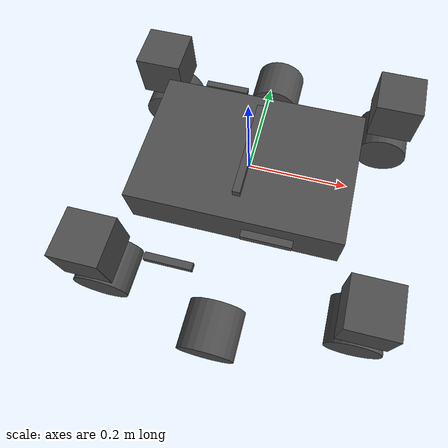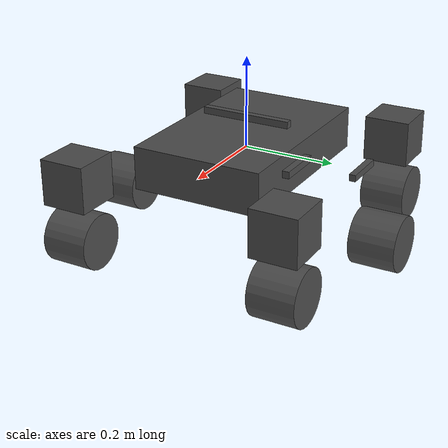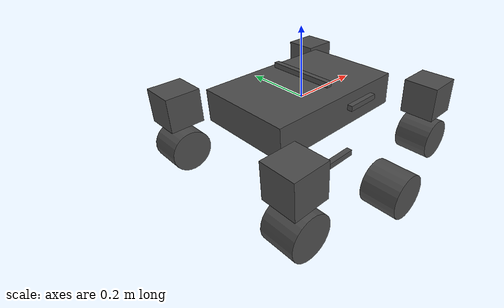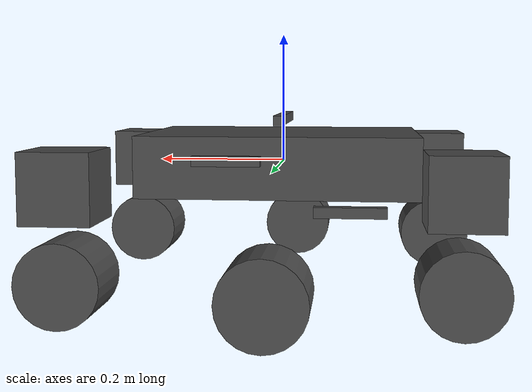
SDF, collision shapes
<sdf version='1.6'>
  <model name='curio'>
    <link name='base_link'>
      <pose frame=''>0 0 0 0 -0 0</pose>
      <inertial>
        <pose frame=''>0 0 0 0 -0 0</pose>
        <mass>0.01</mass>
        <inertia>
          <ixx>0.01</ixx>
          <ixy>0</ixy>
          <ixz>0</ixz>
          <iyy>0.01</iyy>
          <iyz>0</iyz>
          <izz>0.01</izz>
        </inertia>
      </inertial>
      <collision name='base_link_collision'>
        <pose frame=''>0 0 0 0 -0 0</pose>
        <geometry>
          <box>
            <size>0.001 0.001 0.001</size>
          </box>
        </geometry>
        <surface>
          <contact>
            <ode/>
          </contact>
          <friction>
            <ode/>
          </friction>
        </surface>
      </collision>
      <visual name='base_link_visual'>
        <pose frame=''>0 0 0 0 -0 0</pose>
        <geometry>
          <box>
            <size>0.001 0.001 0.001</size>
          </box>
        </geometry>
        <material>
          <script>
            <name>Gazebo/Orange</name>
            <uri>file://media/materials/scripts/gazebo.material</uri>
          </script>
        </material>
      </visual>
      <gravity>1</gravity>
      <velocity_decay/>
    </link>
    <link name='body_box_link'>
      <pose frame=''>0 0 0 0 -0 0</pose>
      <inertial>
        <pose frame=''>0 0 0 0 -0 0</pose>
        <mass>0.5</mass>
        <inertia>
          <ixx>0.00374475</ixx>
          <ixy>0</ixy>
          <ixz>0</ixz>
          <iyy>0.00788642</iyy>
          <iyz>0</iyz>
          <izz>0.0109104</izz>
        </inertia>
      </inertial>
      <collision name='body_box_link_collision'>
        <pose frame=''>0 0 0 0 -0 0</pose>
        <geometry>
          <box>
            <size>0.425 0.285 0.093</size>
          </box>
        </geometry>
        <surface>
          <contact>
            <ode/>
          </contact>
          <friction>
            <ode/>
          </friction>
        </surface>
      </collision>
      <visual name='body_box_link_visual'>
        <pose frame=''>0 0 0 0 -0 0</pose>
        <geometry>
          <box>
            <size>0.425 0.285 0.093</size>
          </box>
        </geometry>
        <material>
          <script>
            <name>Gazebo/DarkGray</name>
            <uri>file://media/materials/scripts/gazebo.material</uri>
          </script>
        </material>
      </visual>
      <gravity>1</gravity>
      <velocity_decay/>
    </link>
    <joint name='body_box_joint' type='fixed'>
      <child>body_box_link</child>
      <parent>base_link</parent>
      <axis>
        <dynamics>
          <spring_reference>0</spring_reference>
          <spring_stiffness>0</spring_stiffness>
        </dynamics>
        <use_parent_model_frame>1</use_parent_model_frame>
        <xyz>0 0 1</xyz>
        <limit>
          <lower>-1e+16</lower>
          <upper>1e+16</upper>
        </limit>
      </axis>
      <physics>
        <ode>
          <limit>
            <cfm>0</cfm>
            <erp>0.2</erp>
          </limit>
        </ode>
      </physics>
    </joint>
    <link name='diff_brace_link'>
      <pose frame=''>0 0 0.0681 0 -0 0</pose>
      <inertial>
        <pose frame=''>0 0 0 0 -0 1.5708</pose>
        <mass>0.1</mass>
        <inertia>
          <ixx>3.75e-06</ixx>
          <ixy>0</ixy>
          <ixz>0</ixz>
          <iyy>0.000335208</iyy>
          <iyz>0</iyz>
          <izz>0.000335208</izz>
        </inertia>
      </inertial>
      <collision name='diff_brace_link_collision'>
        <pose frame=''>0 0 0 0 -0 1.5708</pose>
        <geometry>
          <box>
            <size>0.2 0.015 0.015</size>
          </box>
        </geometry>
        <surface>
          <contact>
            <ode/>
          </contact>
          <friction>
            <ode/>
          </friction>
        </surface>
      </collision>
      <visual name='diff_brace_link_visual'>
        <pose frame=''>0 0 0 0 -0 1.5708</pose>
        <geometry>
          <box>
            <size>0.2 0.015 0.015</size>
          </box>
        </geometry>
        <material>
          <script>
            <name>Gazebo/DarkGray</name>
            <uri>file://media/materials/scripts/gazebo.material</uri>
          </script>
        </material>
      </visual>
      <gravity>1</gravity>
      <velocity_decay/>
    </link>
    <joint name='diff_brace_joint' type='revolute'>
      <child>diff_brace_link</child>
      <parent>base_link</parent>
      <axis>
        <xyz>0 0 1</xyz>
        <limit>
          <lower>-1e+16</lower>
          <upper>1e+16</upper>
        </limit>
        <dynamics>
          <spring_reference>0</spring_reference>
          <spring_stiffness>0</spring_stiffness>
        </dynamics>
        <use_parent_model_frame>1</use_parent_model_frame>
      </axis>
      <physics>
        <provide_feedback>1</provide_feedback>
        <ode>
          <provide_feedback>1</provide_feedback>
          <limit>
            <cfm>0</cfm>
            <erp>0.2</erp>
          </limit>
        </ode>
      </physics>
    </joint>
    <link name='left_rocker_link'>
      <pose frame=''>0.071 0.154 0.0118 0 -0 0</pose>
      <inertial>
        <pose frame=''>0 0 0 0 -0 0</pose>
        <mass>0.1</mass>
        <inertia>
          <ixx>3.75e-06</ixx>
          <ixy>0</ixy>
          <ixz>0</ixz>
          <iyy>8.52083e-05</iyy>
          <iyz>0</iyz>
          <izz>8.52083e-05</izz>
        </inertia>
      </inertial>
      <collision name='left_rocker_link_collision'>
        <pose frame=''>0 0 0 0 -0 0</pose>
        <geometry>
          <box>
            <size>0.1 0.015 0.015</size>
          </box>
        </geometry>
        <surface>
          <contact>
            <ode/>
          </contact>
          <friction>
            <ode/>
          </friction>
        </surface>
      </collision>
      <visual name='left_rocker_link_visual'>
        <pose frame=''>0 0 0 0 -0 0</pose>
        <geometry>
          <box>
            <size>0.1 0.015 0.015</size>
          </box>
        </geometry>
        <material>
          <script>
            <name>Gazebo/DarkGray</name>
            <uri>file://media/materials/scripts/gazebo.material</uri>
          </script>
        </material>
      </visual>
      <gravity>1</gravity>
      <velocity_decay/>
    </link>
    <joint name='left_rocker_joint' type='revolute'>
      <child>left_rocker_link</child>
      <parent>base_link</parent>
      <axis>
        <xyz>0 1 0</xyz>
        <limit>
          <lower>-1e+16</lower>
          <upper>1e+16</upper>
        </limit>
        <dynamics>
          <spring_reference>0</spring_reference>
          <spring_stiffness>0</spring_stiffness>
        </dynamics>
        <use_parent_model_frame>1</use_parent_model_frame>
      </axis>
      <physics>
        <provide_feedback>1</provide_feedback>
        <ode>
          <provide_feedback>1</provide_feedback>
          <limit>
            <cfm>0</cfm>
            <erp>0.2</erp>
          </limit>
        </ode>
      </physics>
    </joint>
    <link name='front_left_corner_link'>
      <pose frame=''>0.2826 0.235 -0.0161 0 -0 0</pose>
      <inertial>
        <pose frame=''>0 0 0 0 -0 0</pose>
        <mass>0.1</mass>
        <inertia>
          <ixx>0.000166667</ixx>
          <ixy>0</ixy>
          <ixz>0</ixz>
          <iyy>0.000166667</iyy>
          <iyz>0</iyz>
          <izz>0.000166667</izz>
        </inertia>
      </inertial>
      <collision name='front_left_corner_link_collision'>
        <pose frame=''>0 0 0 0 -0 0</pose>
        <geometry>
          <box>
            <size>0.1 0.1 0.1</size>
          </box>
        </geometry>
        <surface>
          <contact>
            <ode/>
          </contact>
          <friction>
            <ode/>
          </friction>
        </surface>
      </collision>
      <visual name='front_left_corner_link_visual'>
        <pose frame=''>0 0 0 0 -0 0</pose>
        <geometry>
          <box>
            <size>0.1 0.1 0.1</size>
          </box>
        </geometry>
        <material>
          <script>
            <name>Gazebo/DarkGray</name>
            <uri>file://media/materials/scripts/gazebo.material</uri>
          </script>
        </material>
      </visual>
      <gravity>1</gravity>
      <velocity_decay/>
    </link>
    <joint name='front_left_corner_joint' type='revolute'>
      <child>front_left_corner_link</child>
      <parent>left_rocker_link</parent>
      <axis>
        <xyz>0 0 1</xyz>
        <limit>
          <lower>-1e+16</lower>
          <upper>1e+16</upper>
        </limit>
        <dynamics>
          <spring_reference>0</spring_reference>
          <spring_stiffness>0</spring_stiffness>
        </dynamics>
        <use_parent_model_frame>1</use_parent_model_frame>
      </axis>
      <physics>
        <provide_feedback>1</provide_feedback>
        <ode>
          <provide_feedback>1</provide_feedback>
          <limit>
            <cfm>0</cfm>
            <erp>0.2</erp>
          </limit>
        </ode>
      </physics>
    </joint>
    <link name='front_left_wheel_link'>
      <pose frame=''>0.2826 0.235 -0.1481 0 -0 0</pose>
      <inertial>
        <pose frame=''>0 0 0 0 -0 0</pose>
        <mass>0.1</mass>
        <inertia>
          <ixx>0.000173333</ixx>
          <ixy>0</ixy>
          <ixz>0</ixz>
          <iyy>0.000173333</iyy>
          <iyz>0</iyz>
          <izz>0.00018</izz>
        </inertia>
      </inertial>
      <collision name='front_left_wheel_link_collision'>
        <pose frame=''>0 0 0 1.5708 -0 0</pose>
        <geometry>
          <cylinder>
            <length>0.1</length>
            <radius>0.06</radius>
          </cylinder>
        </geometry>
        <surface>
          <contact>
            <ode/>
          </contact>
          <friction>
            <ode/>
          </friction>
        </surface>
      </collision>
      <visual name='front_left_wheel_link_visual'>
        <pose frame=''>0 0 0 1.5708 -0 0</pose>
        <geometry>
          <mesh>
            <scale>1 1 1</scale>
            <uri>model://curio_description/meshes/wheels/wheel.stl</uri>
          </mesh>
        </geometry>
        <material>
          <script>
            <name>Gazebo/DarkGray</name>
            <uri>file://media/materials/scripts/gazebo.material</uri>
          </script>
        </material>
      </visual>
      <gravity>1</gravity>
      <velocity_decay/>
    </link>
    <joint name='front_left_wheel_joint' type='revolute'>
      <child>front_left_wheel_link</child>
      <parent>front_left_corner_link</parent>
      <axis>
        <xyz>0 1 0</xyz>
        <limit>
          <lower>-1e+16</lower>
          <upper>1e+16</upper>
        </limit>
        <dynamics>
          <spring_reference>0</spring_reference>
          <spring_stiffness>0</spring_stiffness>
        </dynamics>
        <use_parent_model_frame>1</use_parent_model_frame>
      </axis>
      <physics>
        <provide_feedback>1</provide_feedback>
        <ode>
          <provide_feedback>1</provide_feedback>
          <limit>
            <cfm>0</cfm>
            <erp>0.2</erp>
          </limit>
        </ode>
      </physics>
    </joint>
    <link name='left_bogie_link'>
      <pose frame=''>-0.11 0.2215 -0.0502 0 -0 0</pose>
      <inertial>
        <pose frame=''>0 0 0 0 -0 0</pose>
        <mass>0.1</mass>
        <inertia>
          <ixx>3.75e-06</ixx>
          <ixy>0</ixy>
          <ixz>0</ixz>
          <iyy>8.52083e-05</iyy>
          <iyz>0</iyz>
          <izz>8.52083e-05</izz>
        </inertia>
      </inertial>
      <collision name='left_bogie_link_collision'>
        <pose frame=''>0 0 0 0 -0 0</pose>
        <geometry>
          <box>
            <size>0.1 0.015 0.015</size>
          </box>
        </geometry>
        <surface>
          <contact>
            <ode/>
          </contact>
          <friction>
            <ode/>
          </friction>
        </surface>
      </collision>
      <visual name='left_bogie_link_visual'>
        <pose frame=''>0 0 0 0 -0 0</pose>
        <geometry>
          <box>
            <size>0.1 0.015 0.015</size>
          </box>
        </geometry>
        <material>
          <script>
            <name>Gazebo/DarkGray</name>
            <uri>file://media/materials/scripts/gazebo.material</uri>
          </script>
        </material>
      </visual>
      <gravity>1</gravity>
      <velocity_decay/>
    </link>
    <joint name='left_bogie_joint' type='revolute'>
      <child>left_bogie_link</child>
      <parent>left_rocker_link</parent>
      <axis>
        <xyz>0 1 0</xyz>
        <limit>
          <lower>-1e+16</lower>
          <upper>1e+16</upper>
        </limit>
        <dynamics>
          <spring_reference>0</spring_reference>
          <spring_stiffness>0</spring_stiffness>
        </dynamics>
        <use_parent_model_frame>1</use_parent_model_frame>
      </axis>
      <physics>
        <provide_feedback>1</provide_feedback>
        <ode>
          <provide_feedback>1</provide_feedback>
          <limit>
            <cfm>0</cfm>
            <erp>0.2</erp>
          </limit>
        </ode>
      </physics>
    </joint>
    <link name='back_left_corner_link'>
      <pose frame=''>-0.259 0.2351 -0.0164 0 -0 0</pose>
      <inertial>
        <pose frame=''>0 0 0 0 -0 0</pose>
        <mass>0.1</mass>
        <inertia>
          <ixx>0.000166667</ixx>
          <ixy>0</ixy>
          <ixz>0</ixz>
          <iyy>0.000166667</iyy>
          <iyz>0</iyz>
          <izz>0.000166667</izz>
        </inertia>
      </inertial>
      <collision name='back_left_corner_link_collision'>
        <pose frame=''>0 0 0 0 -0 0</pose>
        <geometry>
          <box>
            <size>0.1 0.1 0.1</size>
          </box>
        </geometry>
        <surface>
          <contact>
            <ode/>
          </contact>
          <friction>
            <ode/>
          </friction>
        </surface>
      </collision>
      <visual name='back_left_corner_link_visual'>
        <pose frame=''>0 0 0 0 -0 0</pose>
        <geometry>
          <box>
            <size>0.1 0.1 0.1</size>
          </box>
        </geometry>
        <material>
          <script>
            <name>Gazebo/DarkGray</name>
            <uri>file://media/materials/scripts/gazebo.material</uri>
          </script>
        </material>
      </visual>
      <gravity>1</gravity>
      <velocity_decay/>
    </link>
    <joint name='back_left_corner_joint' type='revolute'>
      <child>back_left_corner_link</child>
      <parent>left_bogie_link</parent>
      <axis>
        <xyz>0 0 1</xyz>
        <limit>
          <lower>-1e+16</lower>
          <upper>1e+16</upper>
        </limit>
        <dynamics>
          <spring_reference>0</spring_reference>
          <spring_stiffness>0</spring_stiffness>
        </dynamics>
        <use_parent_model_frame>1</use_parent_model_frame>
      </axis>
      <physics>
        <provide_feedback>1</provide_feedback>
        <ode>
          <provide_feedback>1</provide_feedback>
          <limit>
            <cfm>0</cfm>
            <erp>0.2</erp>
          </limit>
        </ode>
      </physics>
    </joint>
    <link name='back_left_wheel_link'>
      <pose frame=''>-0.259 0.2351 -0.1484 0 -0 0</pose>
      <inertial>
        <pose frame=''>0 0 0 0 -0 0</pose>
        <mass>0.1</mass>
        <inertia>
          <ixx>0.000173333</ixx>
          <ixy>0</ixy>
          <ixz>0</ixz>
          <iyy>0.000173333</iyy>
          <iyz>0</iyz>
          <izz>0.00018</izz>
        </inertia>
      </inertial>
      <collision name='back_left_wheel_link_collision'>
        <pose frame=''>0 0 0 1.5708 -0 0</pose>
        <geometry>
          <cylinder>
            <length>0.1</length>
            <radius>0.06</radius>
          </cylinder>
        </geometry>
        <surface>
          <contact>
            <ode/>
          </contact>
          <friction>
            <ode/>
          </friction>
        </surface>
      </collision>
      <visual name='back_left_wheel_link_visual'>
        <pose frame=''>0 0 0 1.5708 -0 0</pose>
        <geometry>
          <mesh>
            <scale>1 1 1</scale>
            <uri>model://curio_description/meshes/wheels/wheel.stl</uri>
          </mesh>
        </geometry>
        <material>
          <script>
            <name>Gazebo/DarkGray</name>
            <uri>file://media/materials/scripts/gazebo.material</uri>
          </script>
        </material>
      </visual>
      <gravity>1</gravity>
      <velocity_decay/>
    </link>
    <joint name='back_left_wheel_joint' type='revolute'>
      <child>back_left_wheel_link</child>
      <parent>back_left_corner_link</parent>
      <axis>
        <xyz>0 1 0</xyz>
        <limit>
          <lower>-1e+16</lower>
          <upper>1e+16</upper>
        </limit>
        <dynamics>
          <spring_reference>0</spring_reference>
          <spring_stiffness>0</spring_stiffness>
        </dynamics>
        <use_parent_model_frame>1</use_parent_model_frame>
      </axis>
      <physics>
        <provide_feedback>1</provide_feedback>
        <ode>
          <provide_feedback>1</provide_feedback>
          <limit>
            <cfm>0</cfm>
            <erp>0.2</erp>
          </limit>
        </ode>
      </physics>
    </joint>
    <link name='mid_left_wheel_link'>
      <pose frame=''>-0.0037 0.3144 -0.1461 0 -0 0</pose>
      <inertial>
        <pose frame=''>0 0 0 0 -0 0</pose>
        <mass>0.1</mass>
        <inertia>
          <ixx>0.000173333</ixx>
          <ixy>0</ixy>
          <ixz>0</ixz>
          <iyy>0.000173333</iyy>
          <iyz>0</iyz>
          <izz>0.00018</izz>
        </inertia>
      </inertial>
      <collision name='mid_left_wheel_link_collision'>
        <pose frame=''>0 0 0 1.5708 -0 0</pose>
        <geometry>
          <cylinder>
            <length>0.1</length>
            <radius>0.06</radius>
          </cylinder>
        </geometry>
        <surface>
          <contact>
            <ode/>
          </contact>
          <friction>
            <ode/>
          </friction>
        </surface>
      </collision>
      <visual name='mid_left_wheel_link_visual'>
        <pose frame=''>0 0 0 1.5708 -0 0</pose>
        <geometry>
          <mesh>
            <scale>1 1 1</scale>
            <uri>model://curio_description/meshes/wheels/wheel.stl</uri>
          </mesh>
        </geometry>
        <material>
          <script>
            <name>Gazebo/DarkGray</name>
            <uri>file://media/materials/scripts/gazebo.material</uri>
          </script>
        </material>
      </visual>
      <gravity>1</gravity>
      <velocity_decay/>
    </link>
    <joint name='mid_left_wheel_joint' type='revolute'>
      <child>mid_left_wheel_link</child>
      <parent>left_bogie_link</parent>
      <axis>
        <xyz>0 1 0</xyz>
        <limit>
          <lower>-1e+16</lower>
          <upper>1e+16</upper>
        </limit>
        <dynamics>
          <spring_reference>0</spring_reference>
          <spring_stiffness>0</spring_stiffness>
        </dynamics>
        <use_parent_model_frame>1</use_parent_model_frame>
      </axis>
      <physics>
        <provide_feedback>1</provide_feedback>
        <ode>
          <provide_feedback>1</provide_feedback>
          <limit>
            <cfm>0</cfm>
            <erp>0.2</erp>
          </limit>
        </ode>
      </physics>
    </joint>
    <link name='right_rocker_link'>
      <pose frame=''>0.071 -0.154 0.0118 0 -0 0</pose>
      <inertial>
        <pose frame=''>0 0 0 0 -0 0</pose>
        <mass>0.1</mass>
        <inertia>
          <ixx>3.75e-06</ixx>
          <ixy>0</ixy>
          <ixz>0</ixz>
          <iyy>8.52083e-05</iyy>
          <iyz>0</iyz>
          <izz>8.52083e-05</izz>
        </inertia>
      </inertial>
      <collision name='right_rocker_link_collision'>
        <pose frame=''>0 0 0 0 -0 0</pose>
        <geometry>
          <box>
            <size>0.1 0.015 0.015</size>
          </box>
        </geometry>
        <surface>
          <contact>
            <ode/>
          </contact>
          <friction>
            <ode/>
          </friction>
        </surface>
      </collision>
      <visual name='right_rocker_link_visual'>
        <pose frame=''>0 0 0 0 -0 0</pose>
        <geometry>
          <box>
            <size>0.1 0.015 0.015</size>
          </box>
        </geometry>
        <material>
          <script>
            <name>Gazebo/DarkGray</name>
            <uri>file://media/materials/scripts/gazebo.material</uri>
          </script>
        </material>
      </visual>
      <gravity>1</gravity>
      <velocity_decay/>
    </link>
    <joint name='right_rocker_joint' type='revolute'>
      <child>right_rocker_link</child>
      <parent>base_link</parent>
      <axis>
        <xyz>0 1 0</xyz>
        <limit>
          <lower>-1e+16</lower>
          <upper>1e+16</upper>
        </limit>
        <dynamics>
          <spring_reference>0</spring_reference>
          <spring_stiffness>0</spring_stiffness>
        </dynamics>
        <use_parent_model_frame>1</use_parent_model_frame>
      </axis>
      <physics>
        <provide_feedback>1</provide_feedback>
        <ode>
          <provide_feedback>1</provide_feedback>
          <limit>
            <cfm>0</cfm>
            <erp>0.2</erp>
          </limit>
        </ode>
      </physics>
    </joint>
    <link name='front_right_corner_link'>
      <pose frame=''>0.2826 -0.235 -0.0161 0 -0 0</pose>
      <inertial>
        <pose frame=''>0 0 0 0 -0 0</pose>
        <mass>0.1</mass>
        <inertia>
          <ixx>0.000166667</ixx>
          <ixy>0</ixy>
          <ixz>0</ixz>
          <iyy>0.000166667</iyy>
          <iyz>0</iyz>
          <izz>0.000166667</izz>
        </inertia>
      </inertial>
      <collision name='front_right_corner_link_collision'>
        <pose frame=''>0 0 0 0 -0 0</pose>
        <geometry>
          <box>
            <size>0.1 0.1 0.1</size>
          </box>
        </geometry>
        <surface>
          <contact>
            <ode/>
          </contact>
          <friction>
            <ode/>
          </friction>
        </surface>
      </collision>
      <visual name='front_right_corner_link_visual'>
        <pose frame=''>0 0 0 0 -0 0</pose>
        <geometry>
          <box>
            <size>0.1 0.1 0.1</size>
          </box>
        </geometry>
        <material>
          <script>
            <name>Gazebo/DarkGray</name>
            <uri>file://media/materials/scripts/gazebo.material</uri>
          </script>
        </material>
      </visual>
      <gravity>1</gravity>
      <velocity_decay/>
    </link>
    <joint name='front_right_corner_joint' type='revolute'>
      <child>front_right_corner_link</child>
      <parent>right_rocker_link</parent>
      <axis>
        <xyz>0 0 1</xyz>
        <limit>
          <lower>-1e+16</lower>
          <upper>1e+16</upper>
        </limit>
        <dynamics>
          <spring_reference>0</spring_reference>
          <spring_stiffness>0</spring_stiffness>
        </dynamics>
        <use_parent_model_frame>1</use_parent_model_frame>
      </axis>
      <physics>
        <provide_feedback>1</provide_feedback>
        <ode>
          <provide_feedback>1</provide_feedback>
          <limit>
            <cfm>0</cfm>
            <erp>0.2</erp>
          </limit>
        </ode>
      </physics>
    </joint>
    <link name='front_right_wheel_link'>
      <pose frame=''>0.2826 -0.235 -0.1481 0 -0 0</pose>
      <inertial>
        <pose frame=''>0 0 0 0 -0 0</pose>
        <mass>0.1</mass>
        <inertia>
          <ixx>0.000173333</ixx>
          <ixy>0</ixy>
          <ixz>0</ixz>
          <iyy>0.000173333</iyy>
          <iyz>0</iyz>
          <izz>0.00018</izz>
        </inertia>
      </inertial>
      <collision name='front_right_wheel_link_collision'>
        <pose frame=''>0 0 0 -1.5708 0 0</pose>
        <geometry>
          <cylinder>
            <length>0.1</length>
            <radius>0.06</radius>
          </cylinder>
        </geometry>
        <surface>
          <contact>
            <ode/>
          </contact>
          <friction>
            <ode/>
          </friction>
        </surface>
      </collision>
      <visual name='front_right_wheel_link_visual'>
        <pose frame=''>0 0 0 -1.5708 0 0</pose>
        <geometry>
          <mesh>
            <scale>1 1 1</scale>
            <uri>model://curio_description/meshes/wheels/wheel.stl</uri>
          </mesh>
        </geometry>
        <material>
          <script>
            <name>Gazebo/DarkGray</name>
            <uri>file://media/materials/scripts/gazebo.material</uri>
          </script>
        </material>
      </visual>
      <gravity>1</gravity>
      <velocity_decay/>
    </link>
    <joint name='front_right_wheel_joint' type='revolute'>
      <child>front_right_wheel_link</child>
      <parent>front_right_corner_link</parent>
      <axis>
        <xyz>0 1 0</xyz>
        <limit>
          <lower>-1e+16</lower>
          <upper>1e+16</upper>
        </limit>
        <dynamics>
          <spring_reference>0</spring_reference>
          <spring_stiffness>0</spring_stiffness>
        </dynamics>
        <use_parent_model_frame>1</use_parent_model_frame>
      </axis>
      <physics>
        <provide_feedback>1</provide_feedback>
        <ode>
          <provide_feedback>1</provide_feedback>
          <limit>
            <cfm>0</cfm>
            <erp>0.2</erp>
          </limit>
        </ode>
      </physics>
    </joint>
    <link name='right_bogie_link'>
      <pose frame=''>-0.11 -0.2215 -0.0502 0 -0 0</pose>
      <inertial>
        <pose frame=''>0 0 0 0 -0 0</pose>
        <mass>0.1</mass>
        <inertia>
          <ixx>3.75e-06</ixx>
          <ixy>0</ixy>
          <ixz>0</ixz>
          <iyy>8.52083e-05</iyy>
          <iyz>0</iyz>
          <izz>8.52083e-05</izz>
        </inertia>
      </inertial>
      <collision name='right_bogie_link_collision'>
        <pose frame=''>0 0 0 0 -0 0</pose>
        <geometry>
          <box>
            <size>0.1 0.015 0.015</size>
          </box>
        </geometry>
        <surface>
          <contact>
            <ode/>
          </contact>
          <friction>
            <ode/>
          </friction>
        </surface>
      </collision>
      <visual name='right_bogie_link_visual'>
        <pose frame=''>0 0 0 0 -0 0</pose>
        <geometry>
          <box>
            <size>0.1 0.015 0.015</size>
          </box>
        </geometry>
        <material>
          <script>
            <name>Gazebo/DarkGray</name>
            <uri>file://media/materials/scripts/gazebo.material</uri>
          </script>
        </material>
      </visual>
      <gravity>1</gravity>
      <velocity_decay/>
    </link>
    <joint name='right_bogie_joint' type='revolute'>
      <child>right_bogie_link</child>
      <parent>right_rocker_link</parent>
      <axis>
        <xyz>0 1 0</xyz>
        <limit>
          <lower>-1e+16</lower>
          <upper>1e+16</upper>
        </limit>
        <dynamics>
          <spring_reference>0</spring_reference>
          <spring_stiffness>0</spring_stiffness>
        </dynamics>
        <use_parent_model_frame>1</use_parent_model_frame>
      </axis>
      <physics>
        <provide_feedback>1</provide_feedback>
        <ode>
          <provide_feedback>1</provide_feedback>
          <limit>
            <cfm>0</cfm>
            <erp>0.2</erp>
          </limit>
        </ode>
      </physics>
    </joint>
    <link name='back_right_corner_link'>
      <pose frame=''>-0.259 -0.2351 -0.0164 0 -0 0</pose>
      <inertial>
        <pose frame=''>0 0 0 0 -0 0</pose>
        <mass>0.1</mass>
        <inertia>
          <ixx>0.000166667</ixx>
          <ixy>0</ixy>
          <ixz>0</ixz>
          <iyy>0.000166667</iyy>
          <iyz>0</iyz>
          <izz>0.000166667</izz>
        </inertia>
      </inertial>
      <collision name='back_right_corner_link_collision'>
        <pose frame=''>0 0 0 0 -0 0</pose>
        <geometry>
          <box>
            <size>0.1 0.1 0.1</size>
          </box>
        </geometry>
        <surface>
          <contact>
            <ode/>
          </contact>
          <friction>
            <ode/>
          </friction>
        </surface>
      </collision>
      <visual name='back_right_corner_link_visual'>
        <pose frame=''>0 0 0 0 -0 0</pose>
        <geometry>
          <box>
            <size>0.1 0.1 0.1</size>
          </box>
        </geometry>
        <material>
          <script>
            <name>Gazebo/DarkGray</name>
            <uri>file://media/materials/scripts/gazebo.material</uri>
          </script>
        </material>
      </visual>
      <gravity>1</gravity>
      <velocity_decay/>
    </link>
    <joint name='back_right_corner_joint' type='revolute'>
      <child>back_right_corner_link</child>
      <parent>right_bogie_link</parent>
      <axis>
        <xyz>0 0 1</xyz>
        <limit>
          <lower>-1e+16</lower>
          <upper>1e+16</upper>
        </limit>
        <dynamics>
          <spring_reference>0</spring_reference>
          <spring_stiffness>0</spring_stiffness>
        </dynamics>
        <use_parent_model_frame>1</use_parent_model_frame>
      </axis>
      <physics>
        <provide_feedback>1</provide_feedback>
        <ode>
          <provide_feedback>1</provide_feedback>
          <limit>
            <cfm>0</cfm>
            <erp>0.2</erp>
          </limit>
        </ode>
      </physics>
    </joint>
    <link name='back_right_wheel_link'>
      <pose frame=''>-0.259 -0.2351 -0.1484 0 -0 0</pose>
      <inertial>
        <pose frame=''>0 0 0 0 -0 0</pose>
        <mass>0.1</mass>
        <inertia>
          <ixx>0.000173333</ixx>
          <ixy>0</ixy>
          <ixz>0</ixz>
          <iyy>0.000173333</iyy>
          <iyz>0</iyz>
          <izz>0.00018</izz>
        </inertia>
      </inertial>
      <collision name='back_right_wheel_link_collision'>
        <pose frame=''>0 0 0 -1.5708 0 0</pose>
        <geometry>
          <cylinder>
            <length>0.1</length>
            <radius>0.06</radius>
          </cylinder>
        </geometry>
        <surface>
          <contact>
            <ode/>
          </contact>
          <friction>
            <ode/>
          </friction>
        </surface>
      </collision>
      <visual name='back_right_wheel_link_visual'>
        <pose frame=''>0 0 0 -1.5708 0 0</pose>
        <geometry>
          <mesh>
            <scale>1 1 1</scale>
            <uri>model://curio_description/meshes/wheels/wheel.stl</uri>
          </mesh>
        </geometry>
        <material>
          <script>
            <name>Gazebo/DarkGray</name>
            <uri>file://media/materials/scripts/gazebo.material</uri>
          </script>
        </material>
      </visual>
      <gravity>1</gravity>
      <velocity_decay/>
    </link>
    <joint name='back_right_wheel_joint' type='revolute'>
      <child>back_right_wheel_link</child>
      <parent>back_right_corner_link</parent>
      <axis>
        <xyz>0 1 0</xyz>
        <limit>
          <lower>-1e+16</lower>
          <upper>1e+16</upper>
        </limit>
        <dynamics>
          <spring_reference>0</spring_reference>
          <spring_stiffness>0</spring_stiffness>
        </dynamics>
        <use_parent_model_frame>1</use_parent_model_frame>
      </axis>
      <physics>
        <provide_feedback>1</provide_feedback>
        <ode>
          <provide_feedback>1</provide_feedback>
          <limit>
            <cfm>0</cfm>
            <erp>0.2</erp>
          </limit>
        </ode>
      </physics>
    </joint>
    <link name='mid_right_wheel_link'>
      <pose frame=''>-0.0037 -0.3144 -0.1461 0 -0 0</pose>
      <inertial>
        <pose frame=''>0 0 0 0 -0 0</pose>
        <mass>0.1</mass>
        <inertia>
          <ixx>0.000173333</ixx>
          <ixy>0</ixy>
          <ixz>0</ixz>
          <iyy>0.000173333</iyy>
          <iyz>0</iyz>
          <izz>0.00018</izz>
        </inertia>
      </inertial>
      <collision name='mid_right_wheel_link_collision'>
        <pose frame=''>0 0 0 -1.5708 0 0</pose>
        <geometry>
          <cylinder>
            <length>0.1</length>
            <radius>0.06</radius>
          </cylinder>
        </geometry>
        <surface>
          <contact>
            <ode/>
          </contact>
          <friction>
            <ode/>
          </friction>
        </surface>
      </collision>
      <visual name='mid_right_wheel_link_visual'>
        <pose frame=''>0 0 0 -1.5708 0 0</pose>
        <geometry>
          <mesh>
            <scale>1 1 1</scale>
            <uri>model://curio_description/meshes/wheels/wheel.stl</uri>
          </mesh>
        </geometry>
        <material>
          <script>
            <name>Gazebo/DarkGray</name>
            <uri>file://media/materials/scripts/gazebo.material</uri>
          </script>
        </material>
      </visual>
      <gravity>1</gravity>
      <velocity_decay/>
    </link>
    <joint name='mid_right_wheel_joint' type='revolute'>
      <child>mid_right_wheel_link</child>
      <parent>right_bogie_link</parent>
      <axis>
        <xyz>0 1 0</xyz>
        <limit>
          <lower>-1e+16</lower>
          <upper>1e+16</upper>
        </limit>
        <dynamics>
          <spring_reference>0</spring_reference>
          <spring_stiffness>0</spring_stiffness>
        </dynamics>
        <use_parent_model_frame>1</use_parent_model_frame>
      </axis>
      <physics>
        <provide_feedback>1</provide_feedback>
        <ode>
          <provide_feedback>1</provide_feedback>
          <limit>
            <cfm>0</cfm>
            <erp>0.2</erp>
          </limit>
        </ode>
      </physics>
    </joint>
    <plugin name='gazebo_ros_control' filename='libgazebo_ros_control.so'>
      <robotNamespace>/</robotNamespace>
      <robotSimType>gazebo_ros_control/DefaultRobotHWSim</robotSimType>
      <legacyModeNS>0</legacyModeNS>
    </plugin>
    <plugin name='gazebo_ros_joint_state_publisher' filename='libgazebo_ros_joint_state_publisher.so'>
      <robotNamespace>/</robotNamespace>
      <jointName>left_rocker_joint, right_rocker_joint, front_left_corner_joint, front_right_corner_joint, front_left_wheel_joint, front_right_wheel_joint, left_bogie_joint, right_bogie_joint, mid_left_wheel_joint, mid_right_wheel_joint, back_left_corner_joint, back_right_corner_joint, back_left_wheel_joint, back_right_wheel_joint</jointName>
      <updateRate>50</updateRate>
      <alwaysOn>1</alwaysOn>
    </plugin>
    <static>0</static>
    <link name='left_turnbuckle_link'>
      <visual name='left_turnbuckle_link_visual'>
        <geometry>
          <box>
            <size>0.07 0.005 0.005</size>
          </box>
        </geometry>
      </visual>
      <collision name='left_turnbuckle_link_collision'>
        <geometry>
          <box>
            <size>0.07 0.005 0.005</size>
          </box>
        </geometry>
      </collision>
      <inertial>
        <mass>0.01</mass>
        <inertia>
          <ixx>0.0001</ixx>
          <ixy>0</ixy>
          <ixz>0</ixz>
          <iyy>0.0001</iyy>
          <iyz>0</iyz>
          <izz>0.0001</izz>
        </inertia>
      </inertial>
    </link>
    <joint name='left_turnbuckle_rocker_joint' type='ball'>
      <pose frame=''>0 0 0 0 -0 0</pose>
      <parent>left_rocker_link</parent>
      <child>left_turnbuckle_link</child>
    </joint>
    <link name='right_turnbuckle_link'>
      <visual name='right_turnbuckle_link_visual'>
        <geometry>
          <box>
            <size>0.07 0.005 0.005</size>
          </box>
        </geometry>
      </visual>
      <collision name='right_turnbuckle_link_collision'>
        <geometry>
          <box>
            <size>0.07 0.005 0.005</size>
          </box>
        </geometry>
      </collision>
      <inertial>
        <mass>0.01</mass>
        <inertia>
          <ixx>0.0001</ixx>
          <ixy>0</ixy>
          <ixz>0</ixz>
          <iyy>0.0001</iyy>
          <iyz>0</iyz>
          <izz>0.0001</izz>
        </inertia>
      </inertial>
    </link>
    <joint name='right_turnbuckle_rocker_joint' type='ball'>
      <pose frame=''>0 0 0 0 -0 0</pose>
      <parent>right_rocker_link</parent>
      <child>right_turnbuckle_link</child>
    </joint>
  </model>
</sdf>
